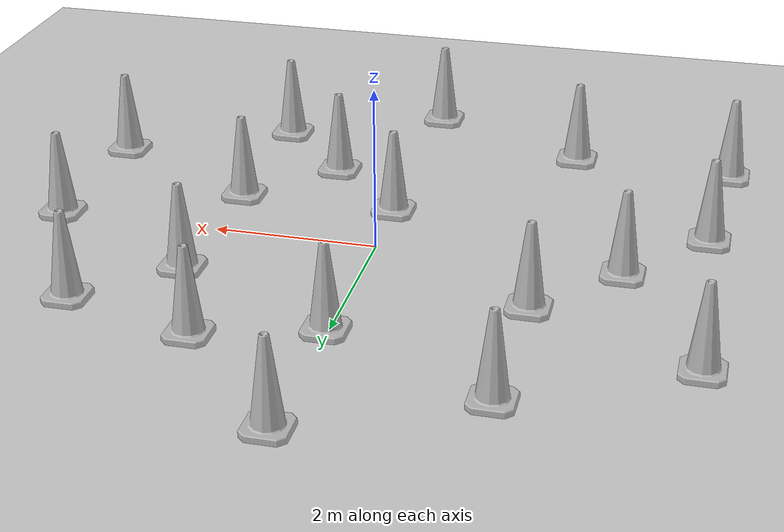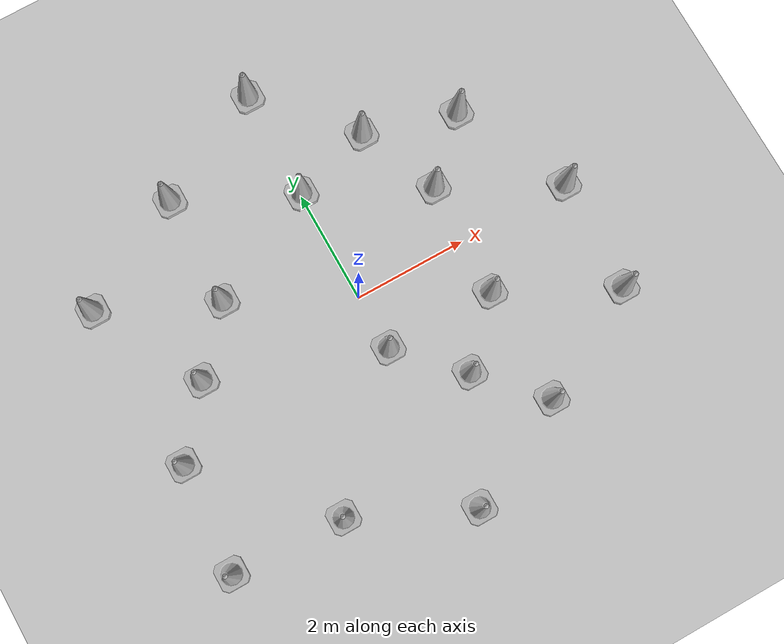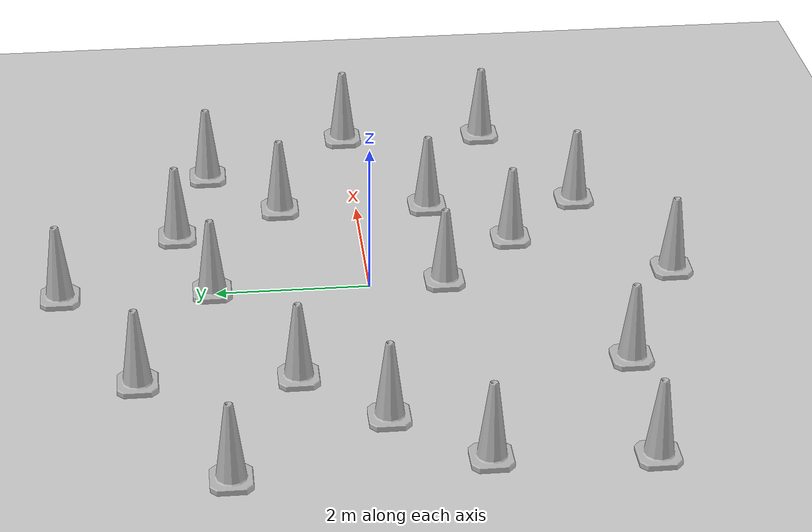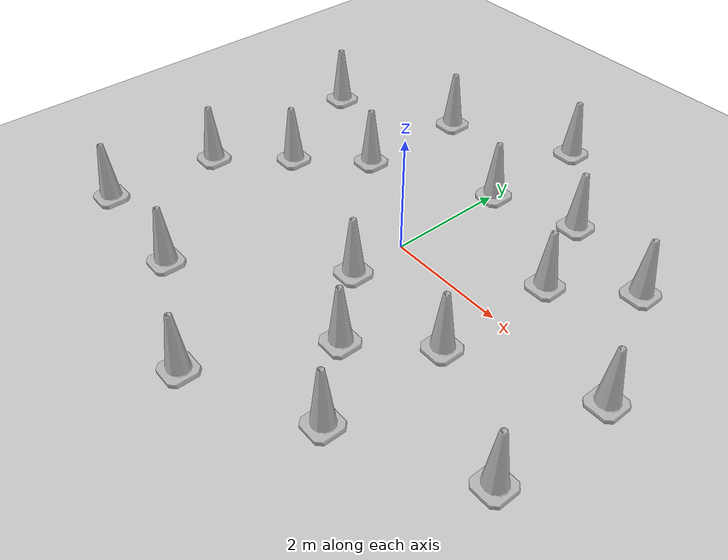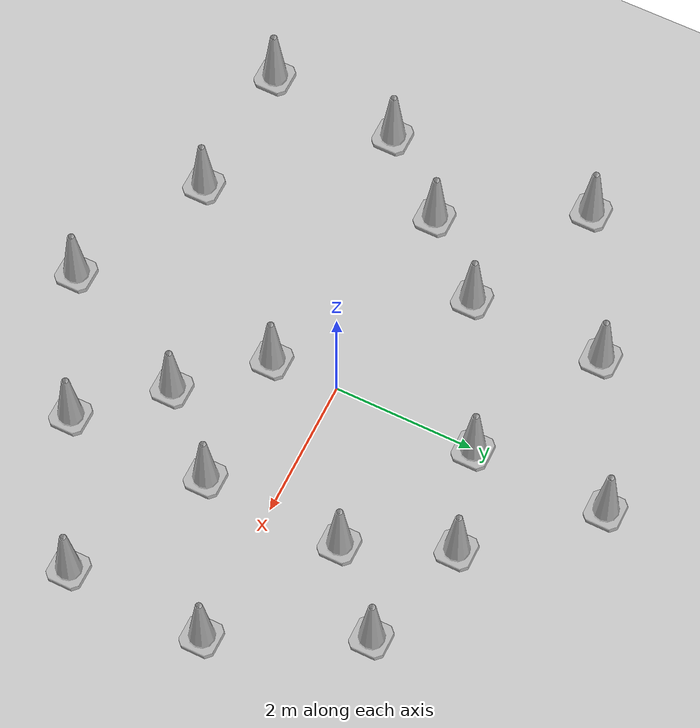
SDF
<sdf version="1.7">
 <world name="default">
  <light name="sun" type="directional">
   <pose>0 0 10 0 -0 0</pose>
   <diffuse>0.8 0.8 0.8 1</diffuse>
   <specular>0.2 0.2 0.2 1</specular>
   <attenuation>
    <range>1000</range>
    <constant>0.9</constant>
    <linear>0.01</linear>
    <quadratic>0.001</quadratic>
   </attenuation>
   <direction>-0.5 0.1 -0.9</direction>
   <spot><inner_angle>0</inner_angle><outer_angle>0</outer_angle><falloff>0</falloff></spot>
  </light>
  <model name="ground_plane">
   <static>1</static>
   <link name="link">
    <collision name="collision">
     <geometry><plane><normal>0 0 1</normal><size>100 100</size></plane></geometry>
     <surface><friction><ode><mu>100</mu><mu2>50</mu2></ode></friction></surface>
    </collision>
    <visual name="visual">
     <cast_shadows>0</cast_shadows>
     <geometry><plane><normal>0 0 1</normal><size>100 100</size></plane></geometry>
     <material>
      <script><uri>file://media/materials/scripts/gazebo.material</uri><name>Gazebo/Grey</name></script>
     </material>
    </visual>
   </link>
  </model>
  <gravity>0 0 -9.8</gravity>
  <magnetic_field>6e-06 2.3e-05 -4.2e-05</magnetic_field>
  <atmosphere type="adiabatic"/>
  <physics type="ode">
   <max_step_size>0.001</max_step_size>
   <real_time_factor>1</real_time_factor>
   <real_time_update_rate>1000</real_time_update_rate>
  </physics>
  <scene><ambient>0.4 0.4 0.4 1</ambient><background>0.7 0.7 0.7 1</background><shadows>1</shadows></scene>
  <audio><device>default</device></audio>
  <spherical_coordinates>
   <surface_model>EARTH_WGS84</surface_model>
   <latitude_deg>0</latitude_deg>
   <longitude_deg>0</longitude_deg>
   <elevation>0</elevation>
   <heading_deg>0</heading_deg>
  </spherical_coordinates>
  <model name="Construction Cone">
   <link name="link">
    <collision name="collision">
     <geometry>
      <mesh><scale>10 10 10</scale><uri>model://construction_cone/meshes/construction_cone.dae</uri></mesh>
     </geometry>
    </collision>
    <visual name="visual">
     <geometry>
      <mesh><scale>10 10 10</scale><uri>model://construction_cone/meshes/construction_cone.dae</uri></mesh>
     </geometry>
    </visual>
    <inertial>
     <inertia><ixx>1</ixx><ixy>0</ixy><ixz>0</ixz><iyy>1</iyy><iyz>0</iyz><izz>1</izz></inertia>
     <mass>1</mass>
    </inertial>
   </link>
   <pose>0.018415 -0.978578 -0 0 -0 0</pose>
  </model>
  <model name="Construction Cone_0">
   <link name="link">
    <collision name="collision">
     <geometry>
      <mesh><scale>10 10 10</scale><uri>model://construction_cone/meshes/construction_cone.dae</uri></mesh>
     </geometry>
    </collision>
    <visual name="visual">
     <geometry>
      <mesh><scale>10 10 10</scale><uri>model://construction_cone/meshes/construction_cone.dae</uri></mesh>
     </geometry>
    </visual>
    <inertial>
     <inertia><ixx>1</ixx><ixy>0</ixy><ixz>0</ixz><iyy>1</iyy><iyz>0</iyz><izz>1</izz></inertia>
     <mass>1</mass>
    </inertial>
   </link>
   <pose>0.99686 -1.99629 -0 0 -1e-06 0</pose>
  </model>
  <model name="Construction Cone_1">
   <link name="link">
    <collision name="collision">
     <geometry>
      <mesh><scale>10 10 10</scale><uri>model://construction_cone/meshes/construction_cone.dae</uri></mesh>
     </geometry>
    </collision>
    <visual name="visual">
     <geometry>
      <mesh><scale>10 10 10</scale><uri>model://construction_cone/meshes/construction_cone.dae</uri></mesh>
     </geometry>
    </visual>
    <inertial>
     <inertia><ixx>1</ixx><ixy>0</ixy><ixz>0</ixz><iyy>1</iyy><iyz>0</iyz><izz>1</izz></inertia>
     <mass>1</mass>
    </inertial>
   </link>
   <pose>1.95869 -3.03237 -0 0 -1e-06 0</pose>
  </model>
  <model name="Construction Cone_2">
   <link name="link">
    <collision name="collision">
     <geometry>
      <mesh><scale>10 10 10</scale><uri>model://construction_cone/meshes/construction_cone.dae</uri></mesh>
     </geometry>
    </collision>
    <visual name="visual">
     <geometry>
      <mesh><scale>10 10 10</scale><uri>model://construction_cone/meshes/construction_cone.dae</uri></mesh>
     </geometry>
    </visual>
    <inertial>
     <inertia><ixx>1</ixx><ixy>0</ixy><ixz>0</ixz><iyy>1</iyy><iyz>0</iyz><izz>1</izz></inertia>
     <mass>1</mass>
    </inertial>
   </link>
   <pose>1.97387 -0.981718 -0 0 -0 0</pose>
  </model>
  <model name="Construction Cone_3">
   <link name="link">
    <collision name="collision">
     <geometry>
      <mesh><scale>10 10 10</scale><uri>model://construction_cone/meshes/construction_cone.dae</uri></mesh>
     </geometry>
    </collision>
    <visual name="visual">
     <geometry>
      <mesh><scale>10 10 10</scale><uri>model://construction_cone/meshes/construction_cone.dae</uri></mesh>
     </geometry>
    </visual>
    <inertial>
     <inertia><ixx>1</ixx><ixy>0</ixy><ixz>0</ixz><iyy>1</iyy><iyz>0</iyz><izz>1</izz></inertia>
     <mass>1</mass>
    </inertial>
   </link>
   <pose>-2.02294 1.06412 -0 0 -0 0</pose>
  </model>
  <model name="Construction Cone_4">
   <link name="link">
    <collision name="collision">
     <geometry>
      <mesh><scale>10 10 10</scale><uri>model://construction_cone/meshes/construction_cone.dae</uri></mesh>
     </geometry>
    </collision>
    <visual name="visual">
     <geometry>
      <mesh><scale>10 10 10</scale><uri>model://construction_cone/meshes/construction_cone.dae</uri></mesh>
     </geometry>
    </visual>
    <inertial>
     <inertia><ixx>1</ixx><ixy>0</ixy><ixz>0</ixz><iyy>1</iyy><iyz>0</iyz><izz>1</izz></inertia>
     <mass>1</mass>
    </inertial>
   </link>
   <pose>-3.86048 -1.03479 -0 -0 -0 -0</pose>
  </model>
  <model name="Construction Cone_5">
   <link name="link">
    <collision name="collision">
     <geometry>
      <mesh><scale>10 10 10</scale><uri>model://construction_cone/meshes/construction_cone.dae</uri></mesh>
     </geometry>
    </collision>
    <visual name="visual">
     <geometry>
      <mesh><scale>10 10 10</scale><uri>model://construction_cone/meshes/construction_cone.dae</uri></mesh>
     </geometry>
    </visual>
    <inertial>
     <inertia><ixx>1</ixx><ixy>0</ixy><ixz>0</ixz><iyy>1</iyy><iyz>0</iyz><izz>1</izz></inertia>
     <mass>1</mass>
    </inertial>
   </link>
   <pose>-1.98941 -3.05156 0 -0 -0 -0</pose>
  </model>
  <model name="Construction Cone_6">
   <link name="link">
    <collision name="collision">
     <geometry>
      <mesh><scale>10 10 10</scale><uri>model://construction_cone/meshes/construction_cone.dae</uri></mesh>
     </geometry>
    </collision>
    <visual name="visual">
     <geometry>
      <mesh><scale>10 10 10</scale><uri>model://construction_cone/meshes/construction_cone.dae</uri></mesh>
     </geometry>
    </visual>
    <inertial>
     <inertia><ixx>1</ixx><ixy>0</ixy><ixz>0</ixz><iyy>1</iyy><iyz>0</iyz><izz>1</izz></inertia>
     <mass>1</mass>
    </inertial>
   </link>
   <pose>2.04662 1.04655 -0 0 -1e-06 0</pose>
  </model>
  <model name="Construction Cone_7">
   <link name="link">
    <collision name="collision">
     <geometry>
      <mesh><scale>10 10 10</scale><uri>model://construction_cone/meshes/construction_cone.dae</uri></mesh>
     </geometry>
    </collision>
    <visual name="visual">
     <geometry>
      <mesh><scale>10 10 10</scale><uri>model://construction_cone/meshes/construction_cone.dae</uri></mesh>
     </geometry>
    </visual>
    <inertial>
     <inertia><ixx>1</ixx><ixy>0</ixy><ixz>0</ixz><iyy>1</iyy><iyz>0</iyz><izz>1</izz></inertia>
     <mass>1</mass>
    </inertial>
   </link>
   <pose>0.028033 2.04549 -0 0 -1e-06 0</pose>
  </model>
  <model name="Construction Cone_8">
   <link name="link">
    <collision name="collision">
     <geometry>
      <mesh><scale>10 10 10</scale><uri>model://construction_cone/meshes/construction_cone.dae</uri></mesh>
     </geometry>
    </collision>
    <visual name="visual">
     <geometry>
      <mesh><scale>10 10 10</scale><uri>model://construction_cone/meshes/construction_cone.dae</uri></mesh>
     </geometry>
    </visual>
    <inertial>
     <inertia><ixx>1</ixx><ixy>0</ixy><ixz>0</ixz><iyy>1</iyy><iyz>0</iyz><izz>1</izz></inertia>
     <mass>1</mass>
    </inertial>
   </link>
   <pose>1.43808 2.46855 -0 0 -0 0</pose>
  </model>
  <model name="Construction Cone_9">
   <link name="link">
    <collision name="collision">
     <geometry>
      <mesh><scale>10 10 10</scale><uri>model://construction_cone/meshes/construction_cone.dae</uri></mesh>
     </geometry>
    </collision>
    <visual name="visual">
     <geometry>
      <mesh><scale>10 10 10</scale><uri>model://construction_cone/meshes/construction_cone.dae</uri></mesh>
     </geometry>
    </visual>
    <inertial>
     <inertia><ixx>1</ixx><ixy>0</ixy><ixz>0</ixz><iyy>1</iyy><iyz>0</iyz><izz>1</izz></inertia>
     <mass>1</mass>
    </inertial>
   </link>
   <pose>-2.94883 0.052147 -0 0 -1e-06 0</pose>
  </model>
  <model name="Construction Cone_10">
   <link name="link">
    <collision name="collision">
     <geometry>
      <mesh><scale>10 10 10</scale><uri>model://construction_cone/meshes/construction_cone.dae</uri></mesh>
     </geometry>
    </collision>
    <visual name="visual">
     <geometry>
      <mesh><scale>10 10 10</scale><uri>model://construction_cone/meshes/construction_cone.dae</uri></mesh>
     </geometry>
    </visual>
    <inertial>
     <inertia><ixx>1</ixx><ixy>0</ixy><ixz>0</ixz><iyy>1</iyy><iyz>0</iyz><izz>1</izz></inertia>
     <mass>1</mass>
    </inertial>
   </link>
   <pose>0.021563 -3.99114 -0 0 -0 0</pose>
  </model>
  <model name="Construction Cone_11">
   <link name="link">
    <collision name="collision">
     <geometry>
      <mesh><scale>10 10 10</scale><uri>model://construction_cone/meshes/construction_cone.dae</uri></mesh>
     </geometry>
    </collision>
    <visual name="visual">
     <geometry>
      <mesh><scale>10 10 10</scale><uri>model://construction_cone/meshes/construction_cone.dae</uri></mesh>
     </geometry>
    </visual>
    <inertial>
     <inertia><ixx>1</ixx><ixy>0</ixy><ixz>0</ixz><iyy>1</iyy><iyz>0</iyz><izz>1</izz></inertia>
     <mass>1</mass>
    </inertial>
   </link>
   <pose>-3.99931 -2.96016 -0 0 -0 0</pose>
  </model>
  <model name="Construction Cone_12">
   <link name="link">
    <collision name="collision">
     <geometry>
      <mesh><scale>10 10 10</scale><uri>model://construction_cone/meshes/construction_cone.dae</uri></mesh>
     </geometry>
    </collision>
    <visual name="visual">
     <geometry>
      <mesh><scale>10 10 10</scale><uri>model://construction_cone/meshes/construction_cone.dae</uri></mesh>
     </geometry>
    </visual>
    <inertial>
     <inertia><ixx>1</ixx><ixy>0</ixy><ixz>0</ixz><iyy>1</iyy><iyz>0</iyz><izz>1</izz></inertia>
     <mass>1</mass>
    </inertial>
   </link>
   <pose>-3.98896 1.96546 -0 0 -0 0</pose>
  </model>
  <model name="Construction Cone_13">
   <link name="link">
    <collision name="collision">
     <geometry>
      <mesh><scale>10 10 10</scale><uri>model://construction_cone/meshes/construction_cone.dae</uri></mesh>
     </geometry>
    </collision>
    <visual name="visual">
     <geometry>
      <mesh><scale>10 10 10</scale><uri>model://construction_cone/meshes/construction_cone.dae</uri></mesh>
     </geometry>
    </visual>
    <inertial>
     <inertia><ixx>1</ixx><ixy>0</ixy><ixz>0</ixz><iyy>1</iyy><iyz>0</iyz><izz>1</izz></inertia>
     <mass>1</mass>
    </inertial>
   </link>
   <pose>-1.98251 3.01501 -0 0 -0 0</pose>
  </model>
  <model name="Construction Cone_14">
   <link name="link">
    <collision name="collision">
     <geometry>
      <mesh><scale>10 10 10</scale><uri>model://construction_cone/meshes/construction_cone.dae</uri></mesh>
     </geometry>
    </collision>
    <visual name="visual">
     <geometry>
      <mesh><scale>10 10 10</scale><uri>model://construction_cone/meshes/construction_cone.dae</uri></mesh>
     </geometry>
    </visual>
    <inertial>
     <inertia><ixx>1</ixx><ixy>0</ixy><ixz>0</ixz><iyy>1</iyy><iyz>0</iyz><izz>1</izz></inertia>
     <mass>1</mass>
    </inertial>
   </link>
   <pose>0.048587 3.99942 -0 0 -0 0</pose>
  </model>
  <model name="Construction Cone_15">
   <link name="link">
    <collision name="collision">
     <geometry>
      <mesh><scale>10 10 10</scale><uri>model://construction_cone/meshes/construction_cone.dae</uri></mesh>
     </geometry>
    </collision>
    <visual name="visual">
     <geometry>
      <mesh><scale>10 10 10</scale><uri>model://construction_cone/meshes/construction_cone.dae</uri></mesh>
     </geometry>
    </visual>
    <inertial>
     <inertia><ixx>1</ixx><ixy>0</ixy><ixz>0</ixz><iyy>1</iyy><iyz>0</iyz><izz>1</izz></inertia>
     <mass>1</mass>
    </inertial>
   </link>
   <pose>4.01004 0.014412 -0 0 -0 0</pose>
  </model>
  <model name="Construction Cone_16">
   <link name="link">
    <collision name="collision">
     <geometry>
      <mesh><scale>10 10 10</scale><uri>model://construction_cone/meshes/construction_cone.dae</uri></mesh>
     </geometry>
    </collision>
    <visual name="visual">
     <geometry>
      <mesh><scale>10 10 10</scale><uri>model://construction_cone/meshes/construction_cone.dae</uri></mesh>
     </geometry>
    </visual>
    <inertial>
     <inertia><ixx>1</ixx><ixy>0</ixy><ixz>0</ixz><iyy>1</iyy><iyz>0</iyz><izz>1</izz></inertia>
     <mass>1</mass>
    </inertial>
   </link>
   <pose>3.0495 2.00637 0 -0 -0 -0</pose>
  </model>
  <model name="Construction Cone_17">
   <link name="link">
    <collision name="collision">
     <geometry>
      <mesh><scale>10 10 10</scale><uri>model://construction_cone/meshes/construction_cone.dae</uri></mesh>
     </geometry>
    </collision>
    <visual name="visual">
     <geometry>
      <mesh><scale>10 10 10</scale><uri>model://construction_cone/meshes/construction_cone.dae</uri></mesh>
     </geometry>
    </visual>
    <inertial>
     <inertia><ixx>1</ixx><ixy>0</ixy><ixz>0</ixz><iyy>1</iyy><iyz>0</iyz><izz>1</izz></inertia>
     <mass>1</mass>
    </inertial>
   </link>
   <pose>3.94319 -1.9902 -0 0 -0 0</pose>
  </model>
 </world>
</sdf>
